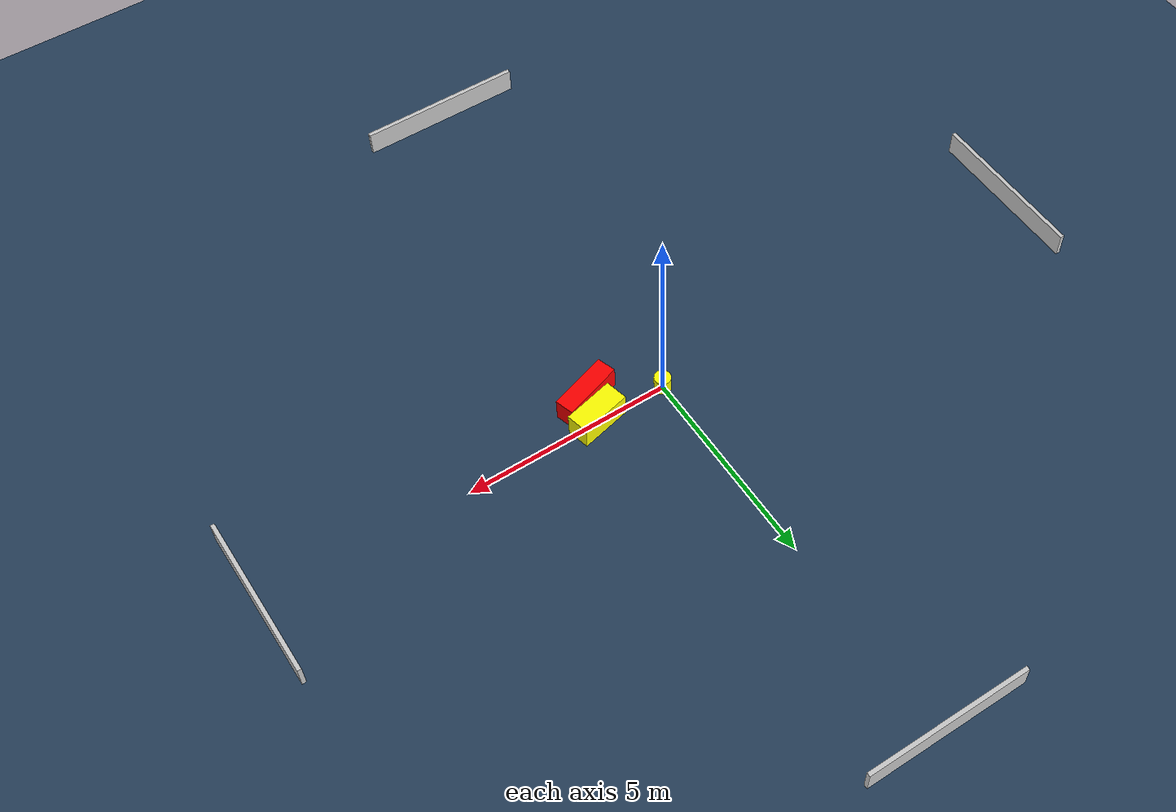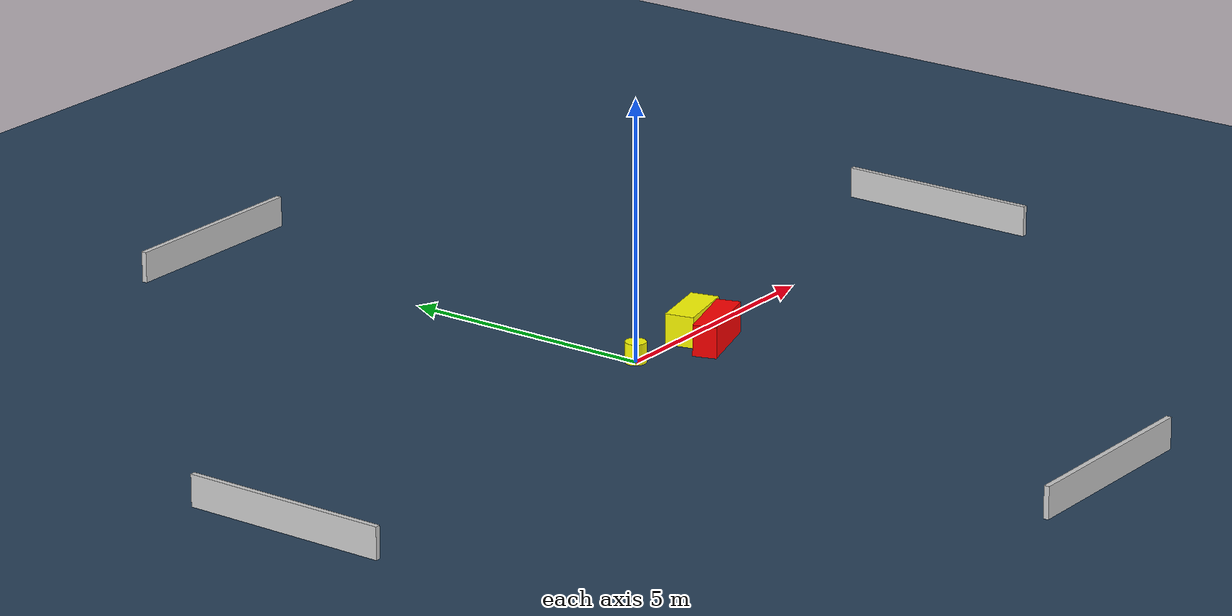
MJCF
<?xml version="1.0" ?>
<mujoco model="generated_environment">
  <option timestep="0.01" integrator="RK4" cone="elliptic"/>
  <default>
    <geom density="1"/>
  </default>
  <asset>
    <texture builtin="gradient" height="3072" name="skybox" rgb1="0.3 0.5 0.7" rgb2="0 0 0" type="skybox" width="512"/>
    <texture builtin="checker" height="300" name="groundplane" rgb1="0.2 0.3 0.4" rgb2="0.1 0.2 0.3" type="2d" width="300"/>
    <material name="groundplane" reflectance="0.2" texrepeat="5 5" texture="groundplane"/>
  </asset>
  <worldbody>
    <light dir="0 0 -1" directional="true" pos="0 0 1.5"/>
    <geom condim="3" friction="0.5 0.005 0.001" material="groundplane" name="floor" pos="0 0 0" size="0 0 0.05" type="plane"/>
    <body name="walls">
      <geom name="wall_1" condim="4" pos="-10.0 0.0 0.3" rgba="0.800000011920929 0.800000011920929 0.800000011920929 1.0" size="0.05 2.0 0.3" type="box"/>
      <geom name="wall_2" condim="4" pos="10.0 0.0 0.3" rgba="0.800000011920929 0.800000011920929 0.800000011920929 1.0" size="0.05 2.0 0.3" type="box"/>
      <geom name="wall_3" condim="4" pos="0.0 -10.0 0.3" rgba="0.800000011920929 0.800000011920929 0.800000011920929 1.0" size="2.0 0.05 0.3" type="box"/>
      <geom name="wall_4" condim="4" pos="0.0 10.0 0.3" rgba="0.800000011920929 0.800000011920929 0.800000011920929 1.0" size="2.0 0.05 0.3" type="box"/>
    </body>
    <body name="robot">
      <joint name="joint_x" type="slide" pos="0 0 0" axis="1 0 0"/>
      <joint name="joint_y" type="slide" pos="0 0 0" axis="0 1 0"/>
      <geom name="robot" type="cylinder" pos="0.0 0.0 0.2" size="0.2 0.2 0.0" mass="5.0" friction="1.0 0.005 0.0001" condim="4" rgba="1.0 1.0 0.0 1.0"/>
    </body>
    <body name="obstacle_1_movable">
      <geom name="obstacle_1_movable" condim="4" pos="1.7183871713196313 -0.026842925924150607 0.3" euler="0 0 103.07828623583374" friction="0.0 0.005 0.001" rgba="1.0 1.0 0.0 1.0" size="0.27623115958998645 0.620264759920433 0.3" type="box" mass="0.1"/>
      <joint type="free"/>
    </body>
    <body name="obstacle_2_static">
      <geom name="obstacle_2_static" condim="4" pos="1.621590408090387 -0.6461695366745124 0.3" euler="0 0 107.6968393694385" friction="0.0 0.005 0.001" rgba="1.0 0.0 0.0 1.0" size="0.22887115459523952 0.7350131232829931 0.3" type="box"/>
    </body>
  </worldbody>
  <actuator>
    <motor name="actuator_x" joint="joint_x" gear="1" ctrlrange="-1 1"/>
    <motor name="actuator_y" joint="joint_y" gear="1" ctrlrange="-1 1"/>
  </actuator>
</mujoco>
